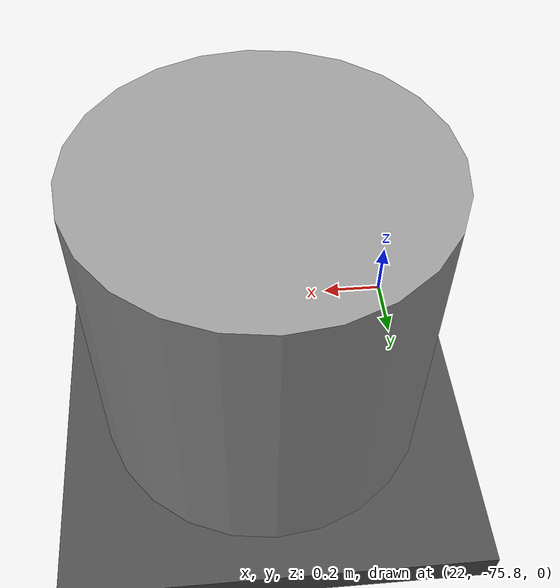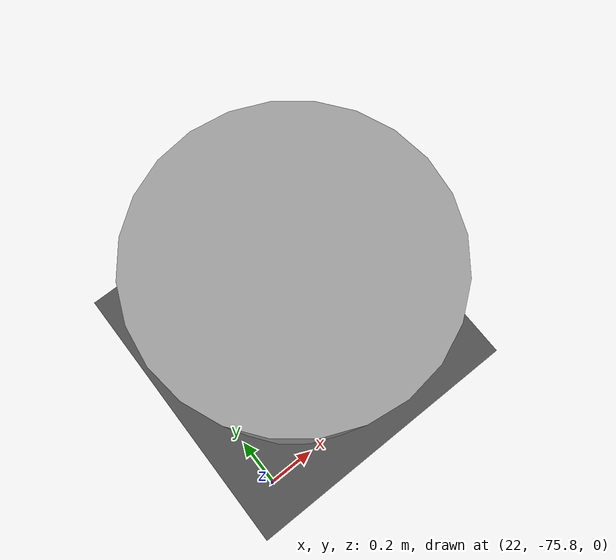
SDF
<sdf version="1.7">
 <world name="default">
  <model name="ground_plane">
   <static>1</static>
   <link name="link">
    <collision name="collision">
     <geometry><plane><normal>0 0 1</normal><size>100 100</size></plane></geometry>
     <surface><friction><ode><mu>100</mu><mu2>50</mu2></ode></friction></surface>
    </collision>
    <visual name="visual">
     <cast_shadows>0</cast_shadows>
     <geometry><plane><normal>0 0 1</normal><size>100 100</size></plane></geometry>
     <material>
      <script><uri>file://media/materials/scripts/gazebo.material</uri><name>Gazebo/Grey</name></script>
     </material>
    </visual>
   </link>
  </model>
  <model name="obstaculos">
   <link name="link_19">
    <inertial>
     <mass>1</mass>
     <inertia><ixx>0.145833</ixx><ixy>0</ixy><ixz>0</ixz><iyy>0.145833</iyy><iyz>0</iyz><izz>0.125</izz></inertia>
    </inertial>
    <pose>-18.5164 -22.2528 0 0 -0 0</pose>
    <visual name="visual">
     <geometry><cylinder><radius>0.5</radius><length>1</length></cylinder></geometry>
     <material>
      <lighting>1</lighting>
      <script><uri>file://media/materials/scripts/gazebo.material</uri><name>Gazebo/Grey</name></script>
      <shader type="pixel"/>
     </material>
    </visual>
    <collision name="collision">
     <geometry><cylinder><radius>0.5</radius><length>1</length></cylinder></geometry>
     <surface>
      <friction>
       <ode><mu>1</mu><mu2>1</mu2><fdir1>0 0 0</fdir1><slip1>0</slip1><slip2>0</slip2></ode>
       <torsional>
        <coefficient>1</coefficient>
        <patch_radius>0</patch_radius>
        <surface_radius>0</surface_radius>
        <use_patch_radius>1</use_patch_radius>
        <ode><slip>0</slip></ode>
       </torsional>
      </friction>
      <bounce><restitution_coefficient>0</restitution_coefficient><threshold>1e+06</threshold></bounce>
      <contact>
       <collide_without_contact>0</collide_without_contact>
       <collide_without_contact_bitmask>1</collide_without_contact_bitmask>
       <collide_bitmask>1</collide_bitmask>
       <ode>
        <soft_cfm>0</soft_cfm>
        <soft_erp>0.2</soft_erp>
        <kp>1e+13</kp>
        <kd>1</kd>
        <max_vel>0.01</max_vel>
        <min_depth>0</min_depth>
       </ode>
       <bullet>
        <split_impulse>1</split_impulse>
        <split_impulse_penetration_threshold>-0.01</split_impulse_penetration_threshold>
        <soft_cfm>0</soft_cfm>
        <soft_erp>0.2</soft_erp>
        <kp>1e+13</kp>
        <kd>1</kd>
       </bullet>
      </contact>
     </surface>
    </collision>
   </link>
   <static>0</static>
   <pose>41.0394 -53.1358 0.499893 -6e-06 5e-06 -0.002479</pose>
  </model>
  <model name="asphalt_plane">
   <link name="link">
    <inertial>
     <mass>1e+23</mass>
     <inertia>
      <ixx>2.07641e+27</ixx>
      <ixy>0</ixy>
      <ixz>0</ixz>
      <iyy>2.7889e+27</iyy>
      <iyz>0</iyz>
      <izz>4.86531e+27</izz>
     </inertia>
    </inertial>
    <visual name="visual">
     <cast_shadows>0</cast_shadows>
     <geometry><box><size>578.505 499.168 0.1</size></box></geometry>
     <material>
      <script>
       <uri>model://asphalt_plane/materials/scripts</uri>
       <uri>model://asphalt_plane/materials/textures</uri>
       <name>vrc/asphalt</name>
      </script>
      <shader type="pixel"><normal_map>__default__</normal_map></shader>
      <ambient>0.5 0.5 0.5 1</ambient>
      <diffuse>0.5 0.5 0.5 1</diffuse>
      <specular>0.2 0.2 0.2 1</specular>
      <emissive>0 0 0 1</emissive>
     </material>
    </visual>
    <collision name="collision">
     <geometry><box><size>578.505 499.168 0.1</size></box></geometry>
     <surface>
      <friction>
       <ode><mu>1</mu><mu2>1</mu2><fdir1>0 0 0</fdir1><slip1>0</slip1><slip2>0</slip2></ode>
       <torsional>
        <coefficient>1</coefficient>
        <patch_radius>0</patch_radius>
        <surface_radius>0</surface_radius>
        <use_patch_radius>1</use_patch_radius>
        <ode><slip>0</slip></ode>
       </torsional>
      </friction>
      <bounce><restitution_coefficient>0</restitution_coefficient><threshold>1e+06</threshold></bounce>
      <contact>
       <collide_without_contact>0</collide_without_contact>
       <collide_without_contact_bitmask>1</collide_without_contact_bitmask>
       <collide_bitmask>1</collide_bitmask>
       <ode>
        <soft_cfm>0</soft_cfm>
        <soft_erp>0.2</soft_erp>
        <kp>1e+13</kp>
        <kd>1</kd>
        <max_vel>0.01</max_vel>
        <min_depth>0</min_depth>
       </ode>
       <bullet>
        <split_impulse>1</split_impulse>
        <split_impulse_penetration_threshold>-0.01</split_impulse_penetration_threshold>
        <soft_cfm>0</soft_cfm>
        <soft_erp>0.2</soft_erp>
        <kp>1e+13</kp>
        <kd>1</kd>
       </bullet>
      </contact>
     </surface>
    </collision>
   </link>
   <static>1</static>
   <pose>0.107557 -0.074396 0 0 -0 0</pose>
  </model>
 </world>
</sdf>
